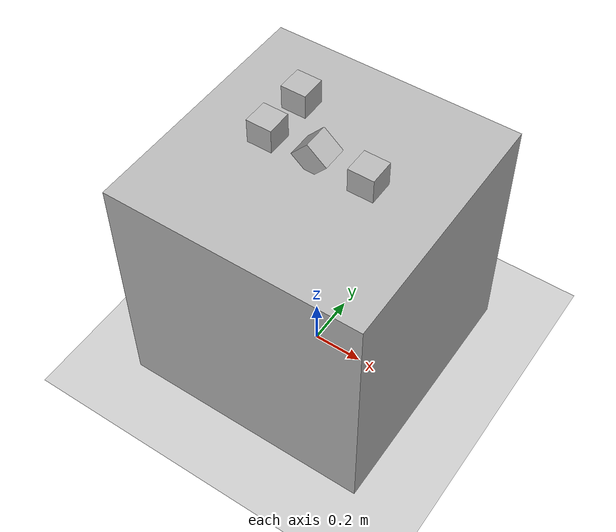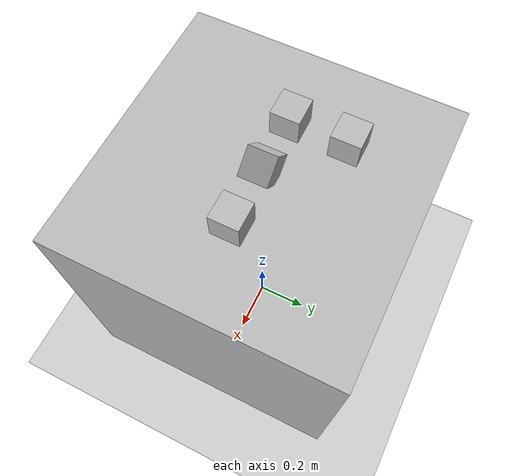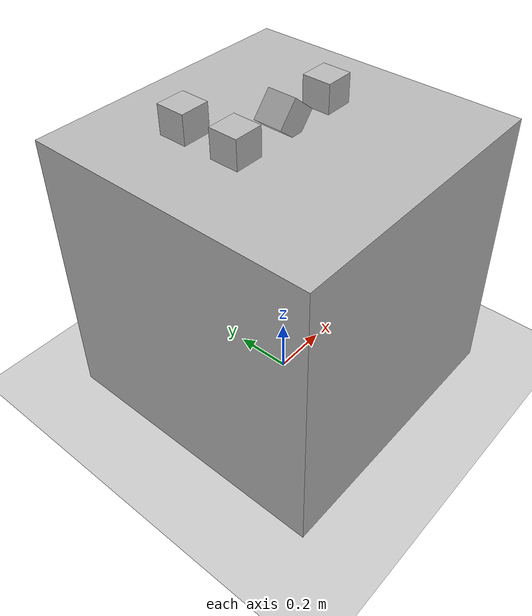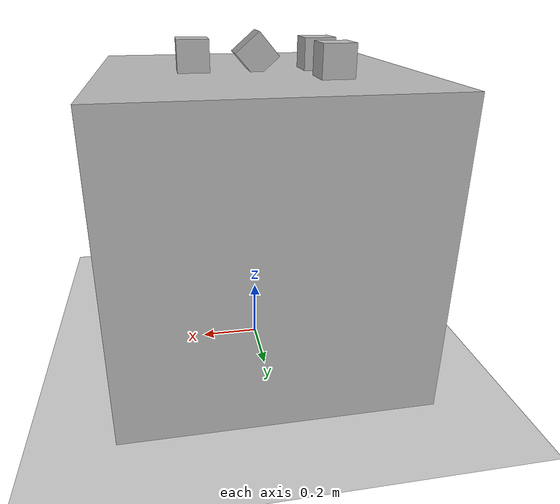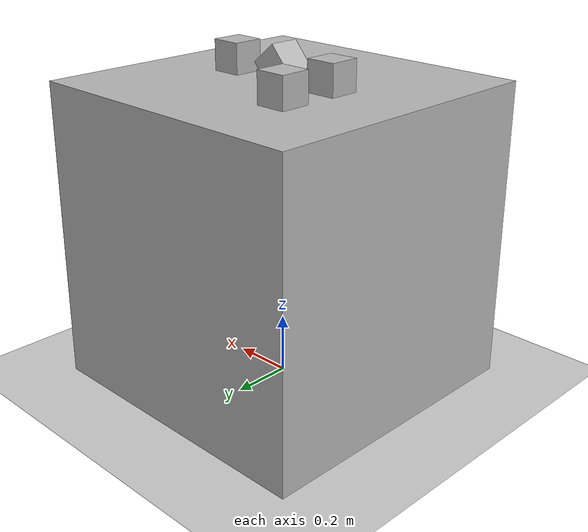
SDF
<?xml version="1.0"?>
<sdf version="1.7">
    <world name="default">
        <!-- A global light source -->
        <include>
            <uri>model://sun</uri>
        </include>
        <!-- A ground plane -->
        <include>
            <uri>model://ground_plane</uri>
        </include>

        <model name="c">
            <frame name="f1">
                <pose>0 0 1 0 0 0</pose>
            </frame>

            <include>
                <uri>model://simple_box</uri>
                <pose>0 0 0 0 0 0</pose>
            </include>

            <joint name="b2imu" type="fixed">
                <parent>simple_box::chassis</parent>
                <child>imu1_link</child>
            </joint>

            <link name="imu1_link">
                <pose relative_to="f1">0 0 .05 0 0.707 0</pose>
                <visual name="visual">
                    <geometry>
                        <box>
                            <size>0.1 0.1 0.1</size>
                        </box>
                    </geometry>
                    <material>
                        <script>
                            <uri>file://arrow/materials/scripts</uri>
                            <uri>file://arrow/materials/textures</uri>
                            <name>arrow</name>
                        </script>
                    </material>
                </visual>
                <sensor name="imu_sensor" type="imu">
                    <pose>0 0 0 0 0 0</pose>
                    <always_on>1</always_on>
                </sensor>
            </link>

            <link name="imu2_link">
                <pose relative_to="f1">0.2 0 .05 0 0 0</pose>
                <visual name="visual">
                    <geometry>
                        <box>
                            <size>0.1 0.1 0.1</size>
                        </box>
                    </geometry>
                    <material>
                        <script>
                            <uri>file://arrow/materials/scripts</uri>
                            <uri>file://arrow/materials/textures</uri>
                            <name>arrow</name>
                        </script>
                    </material>
                </visual>
                <sensor name="imu_sensor" type="imu">
                    <pose>0 0 0 0 1.575 0</pose>
                    <always_on>1</always_on>
                </sensor>
            </link>
            <joint name="b2imu2" type="fixed">
                <parent>simple_box::chassis</parent>
                <child>imu2_link</child>
            </joint>

            <link name="imu3_link">
                <pose relative_to="f1">-0.2 0 .05 0 1.575 0</pose>
                <visual name="visual">
                    <geometry>
                        <box>
                            <size>0.1 0.1 0.1</size>
                        </box>
                    </geometry>
                    <material>
                        <script>
                            <uri>file://arrow/materials/scripts</uri>
                            <uri>file://arrow/materials/textures</uri>
                            <name>arrow</name>
                        </script>
                    </material>
                </visual>
                <sensor name="imu_sensor" type="imu">
                    <pose>0 0 0 0 0 0</pose>
                    <always_on>1</always_on>
                </sensor>
            </link>
            <joint name="b2imu3" type="fixed">
                <parent>simple_box::chassis</parent>
                <child>imu3_link</child>
            </joint>

            <link name="imu4_link">
                <pose relative_to="f1">-0.2 0.2 .05 0 0 0</pose>
                <visual name="visual">
                    <geometry>
                        <box>
                            <size>0.1 0.1 0.1</size>
                        </box>
                    </geometry>
                    <material>
                        <script>
                            <uri>file://arrow/materials/scripts</uri>
                            <uri>file://arrow/materials/textures</uri>
                            <name>arrow</name>
                        </script>
                    </material>
                </visual>
                <sensor name="imu_sensor" type="imu">
                    <pose>0 0 0 0 0 0</pose>
                    <always_on>1</always_on>
                </sensor>
            </link>
            <joint name="b2imu4" type="fixed">
                <parent>simple_box::chassis</parent>
                <child>imu4_link</child>
            </joint>
        </model>
    </world>
</sdf>

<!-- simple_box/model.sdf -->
<sdf version="1.7">
  <model name="simple_box">
    <static>true</static>
    <link name="chassis">
      <pose>0 0 0.5 0 0 0</pose>
      <collision name="collision">
        <geometry>
          <box>
            <size>1.0 1.0 1.0</size>
          </box>
        </geometry>
      </collision>
      <visual name="visual">
        <geometry>
          <box>
            <size>1.0 1.0 1.0</size>
          </box>
        </geometry>
      </visual>
    </link>
    <plugin name="simple" filename="libNodeDemoPlugin.so"/>
  </model>
</sdf>
